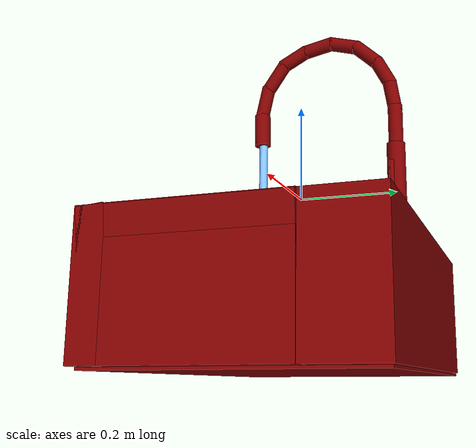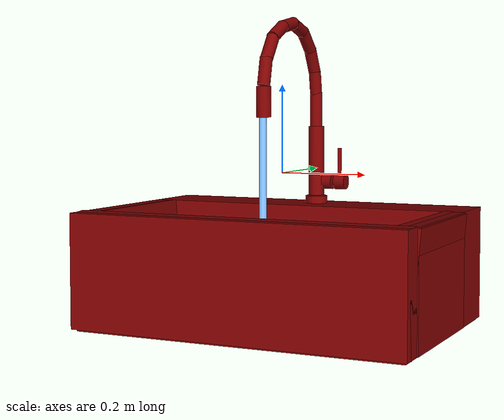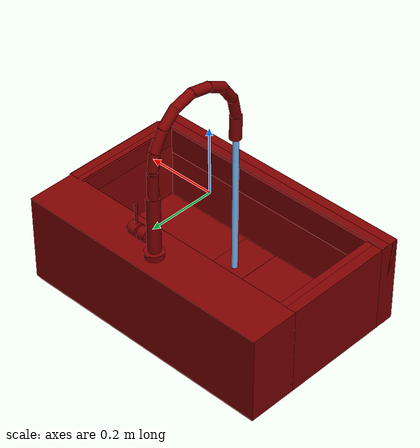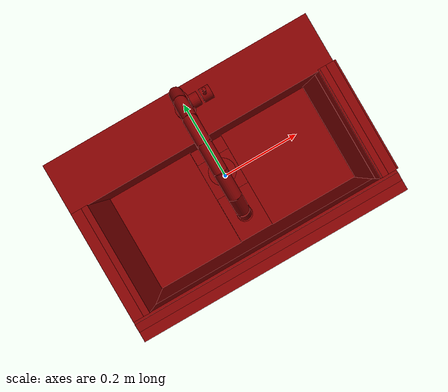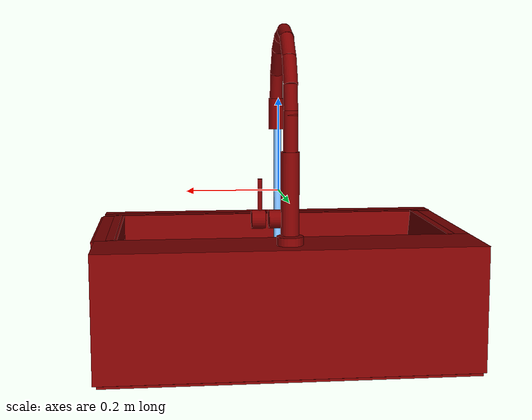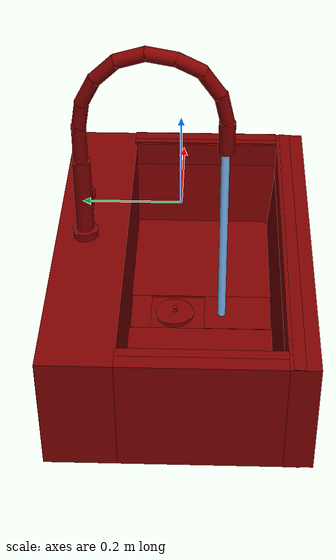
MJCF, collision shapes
<mujoco model="model">
  <compiler angle="radian"/>
  <asset>
    <mesh file="visuals/handle.obj" name="handle_vis"/>
    <mesh file="visuals/Body001.obj" name="Body001_vis"/>
    <mesh file="visuals/Funnel001.obj" name="Funnel001_vis"/>
    <mesh file="visuals/spout.obj" name="spout_vis"/>
    <texture file="visuals/T_BC001.png" name="Body001_material" type="2d"/>
    <material name="Body001_material" rgba="1 1 1 1.0" texture="Body001_material" shininess="0.5" specular="0.3103448502657381"/>
    <texture file="visuals/T_BC001.png" name="handle_material" type="2d"/>
    <material name="handle_material" rgba="1 1 1 1.0" texture="handle_material" shininess="0.5" specular="0.3103448502657381"/>
    <texture file="visuals/T_BC001.png" name="Funnel001_material" type="2d"/>
    <material name="Funnel001_material" rgba="1 1 1 1.0" texture="Funnel001_material" shininess="0.5" specular="0.3103448502657381"/>
    <texture file="visuals/T_BC001.png" name="spout_material" type="2d"/>
    <material name="spout_material" rgba="1 1 1 1.0" texture="spout_material" shininess="0.5" specular="0.3103448502657381"/>
  </asset>
  <default>
    <default class="visual">
      <geom conaffinity="0" contype="0" group="1" type="mesh"/>
    </default>
    <default class="collision">
      <geom group="0" rgba="0.5 0 0 0.5"/>
    </default>
    <default class="spawn">
      <geom group="0" rgba="1 1 1 0.5" contype="0" conaffinity="0"/>
      <site group="0" rgba="1 1 1 0.5"/>
    </default>
    <default class="region">
      <geom group="1" conaffinity="0" contype="0" rgba="0 1 0 0"/>
    </default>
  </default>
  <worldbody>
    <body>
      <body name="object">
        <geom mesh="Body001_vis" type="mesh" solimp="0.998 0.998 0.001" solref="0.001 1" density="100" friction="0.95 0.3 0.1" class="visual" material="Body001_material"/>
        <geom class="collision" type="box" pos="0.3697492480278015 -0.04568054899573326 -0.2152286171913147" size="0.024395400658249855 0.1631319373846054 0.13056614995002747" quat="1.0 0.0 0.0 0.0"/>
        <geom class="collision" type="box" pos="-0.3610308766365051 -0.04747682437300682 -0.2152286171913147" size="0.024395400658249855 0.16192060708999634 0.13056538999080658" quat="0.9991624355316162 -1.7868886353081736e-15 -0.04091975465416908 -5.497930999354139e-09"/>
        <geom class="collision" type="box" pos="-0.0026058852672576904 -0.23854374885559082 -0.2152286171913147" size="0.3940281867980957 0.029978249222040176 0.13056379556655884" quat="1.0 0.0 0.0 0.0"/>
        <geom class="collision" type="box" pos="-0.0026058852672576904 0.1867445409297943 -0.21522870659828186" size="0.3940281867980957 0.0734427198767662 0.13056260347366333" quat="1.0 0.0 0.0 0.0"/>
        <geom class="collision" type="box" pos="0.19231392443180084 -0.041119471192359924 -0.29505303502082825" size="0.14259092509746552 0.15329819917678833 0.0025907354429364204" quat="1.0 0.0 0.0 0.0"/>
        <geom class="collision" type="box" pos="-0.19971199333667755 -0.041119471192359924 -0.29505303502082825" size="0.14259092509746552 0.15329819917678833 0.0025907354429364204" quat="1.0 0.0 0.0 0.0"/>
        <geom class="collision" type="box" pos="-0.003319887910038233 -0.12149616330862045 -0.29505303502082825" size="0.05315235257148743 0.07167475670576096 0.002590706804767251" quat="1.0 0.0 0.0 0.0"/>
        <geom class="collision" type="box" pos="-0.003319887910038233 0.0885448157787323 -0.29505303502082825" size="0.05315235257148743 0.021316012367606163 0.002590713556855917" quat="1.0 0.0 0.0 0.0"/>
        <geom class="collision" type="box" pos="-0.003686504438519478 0.0016191205941140652 -0.34971803426742554" size="0.3874240517616272 0.2551394999027252 0.0025907610543072224" quat="1.0 0.0 0.0 0.0"/>
        <geom class="collision" type="cylinder" pos="-0.001954361330717802 0.20051738619804382 -0.07855931669473648" size="0.027052659541368484 0.01135980524122715" quat="1.0 0.0 0.0 0.0"/>
        <geom class="collision" type="cylinder" pos="0.029527481645345688 0.20152628421783447 -0.031200895085930824" size="0.018711162731051445 0.011754904873669147" quat="0.7071068286895752 -4.750302906586512e-08 -0.7071067094802856 -4.7503018407724085e-08"/>
        <geom class="collision" type="box" pos="0.36287572979927063 -0.04568054899573326 -0.2152286171913147" size="0.024395400658249855 0.1631319373846054 0.1305655986070633" quat="0.9989326000213623 -1.4677487495185003e-16 0.04619131609797478 6.206211544679263e-09"/>
        <geom class="collision" type="box" pos="-0.37238848209381104 -0.04747682437300682 -0.2152286171913147" size="0.024395400658249855 0.16192060708999634 0.13056544959545135" quat="1.0 0.0 0.0 0.0"/>
        <geom class="collision" type="box" pos="-0.0026058852672576904 -0.22930940985679626 -0.2148112654685974" size="0.3940281867980957 0.02557588554918766 0.13056381046772003" quat="0.9988733530044556 0.04745541885495186 1.0537219731199667e-17 -9.44435023960429e-25"/>
        <body name="handle">
          <joint axis="1.0 0.0 0.0" pos="0.05964481830596924 0.20174899697303772 -0.031078971922397614" limited="true" name="handle_joint_hinge_0" type="hinge" range="-0.7853981633974483 0.7853981633974483" damping="1" frictionloss="1" armature=".01" stiffness="0.05"/>
          <joint axis="0.0 1.0 0.0" pos="0.05964481830596924 0.20174899697303772 -0.031078971922397614" limited="true" name="handle_joint_hinge_1" type="hinge" range="0.0 0.17453292519943295" damping="1" frictionloss="1" armature=".01" stiffness="0.05"/>
          <geom mesh="handle_vis" type="mesh" solimp="0.998 0.998 0.001" solref="0.001 1" density="100" friction="0.95 0.3 0.1" class="visual" material="handle_material"/>
          <geom class="collision" type="cylinder" pos="0.06184382736682892 0.20152628421783447 -0.031200895085930824" size="0.018711162731051445 0.013477998785674572" quat="0.7071068286895752 -4.750302906586512e-08 -0.7071067094802856 -4.7503018407724085e-08"/>
          <geom class="collision" type="cylinder" pos="0.05847639963030815 0.20152628421783447 0.017891760915517807" size="0.004444473888725042 0.031614042818546295" quat="1.9470718370939721e-07 -6.717943534795268e-08 -1.0 -1.3435885648505064e-07"/>
        </body>
        <body name="Funnel001">
          <joint axis="0.0 0.0 1.0" pos="0.00016035611042752862 0.015223007649183273 -0.2924407720565796" limited="true" name="Funnel001_joint" range="0.0 0.07" type="slide" damping="1" frictionloss="1" armature=".01" stiffness="0.05"/>
          <geom mesh="Funnel001_vis" type="mesh" solimp="0.998 0.998 0.001" solref="0.001 1" density="100" friction="0.95 0.3 0.1" class="visual" material="Funnel001_material"/>
          <geom class="collision" type="cylinder" pos="-0.0012551918625831604 0.01581702008843422 -0.29855725169181824" size="0.041678279638290405 0.00451189000159502" quat="1.0 0.0 0.0 0.0"/>
          <geom class="collision" type="cylinder" pos="7.045501115499064e-05 0.015260804444551468 -0.2878127694129944" size="0.005436237435787916 0.005571270361542702" quat="1.0 0.0 0.0 0.0"/>
        </body>
        <body name="spout">
          <joint axis="0.0 0.0 1.0" pos="-0.0016885249642655253 0.2008167803287506 0.12077277898788452" limited="true" name="spout_joint" range="-0.7853981633974483 0.7853981633974483" type="hinge" damping="1" frictionloss="1" armature=".01" stiffness="0.05"/>
          <site type="cylinder" rgba="0.5 0.75 1 1" size="0.008671263232827187 0.21570436656475067" pos="-0.0075034769251942635 -0.0869688019156456 -0.0869072675704956" name="water"/>
          <geom mesh="spout_vis" type="mesh" solimp="0.998 0.998 0.001" solref="0.001 1" density="100" friction="0.95 0.3 0.1" class="visual" material="spout_material"/>
          <geom class="collision" type="cylinder" pos="-0.001954361330717802 0.20013269782066345 0.01861887238919735" size="0.018673621118068695 0.08345291018486023" quat="1.0 0.0 0.0 0.0"/>
          <geom class="collision" type="cylinder" pos="-0.002834070473909378 0.20051738619804382 0.13955920934677124" size="0.014769676141440868 0.04445847123861313" quat="1.0 0.0 0.0 0.0"/>
          <geom class="collision" type="cylinder" pos="-0.0030824856366962194 0.19635505974292755 0.20318326354026794" size="0.014407367445528507 0.031245440244674683" quat="0.9967895150184631 0.08006640523672104 -1.777831331855518e-17 -1.1219279387742514e-24"/>
          <geom class="collision" type="cylinder" pos="-0.003919945098459721 0.17851653695106506 0.26026651263237" size="0.014407367445528507 0.031245442107319832" quat="0.9715372920036316 0.23688659071922302 -5.2599402683177265e-17 2.6492984339654414e-24"/>
          <geom class="collision" type="cylinder" pos="-0.003934482112526894 0.1430046707391739 0.30610159039497375" size="0.014407367445528507 0.031245442107319832" quat="0.9179835319519043 0.39661848545074463 -8.806699490787487e-17 1.8410522580747548e-23"/>
          <geom class="collision" type="cylinder" pos="-0.004705945495516062 0.09510494768619537 0.3337678015232086" size="0.014407367445528507 0.031245442107319832" quat="0.8012946248054504 0.5982699394226074 -1.3284261233761528e-16 1.0294626924525152e-24"/>
          <geom class="collision" type="cylinder" pos="-0.004705945495516062 0.040185436606407166 0.3370712399482727" size="0.014407367445528507 0.031245442107319832" quat="0.6378546953201294 0.770156741142273 -1.710091625521754e-16 2.853263824707535e-23"/>
          <geom class="collision" type="cylinder" pos="-0.004705945495516062 -0.015972860157489777 0.3184894323348999" size="0.014407367445528507 0.031245442107319832" quat="0.5200801491737366 0.8541174530982971 -1.8965214596300574e-16 6.688529748239366e-25"/>
          <geom class="collision" type="cylinder" pos="-0.004705945495516062 -0.05726572498679161 0.28049999475479126" size="0.014407367445528507 0.031245442107319832" quat="0.29846376180648804 0.9544209837913513 -2.1192401704322051e-16 2.1140980010718258e-23"/>
          <geom class="collision" type="cylinder" pos="-0.004705945495516062 -0.08204144239425659 0.22847098112106323" size="0.014407367445528507 0.031245442107319832" quat="0.1095859631896019 0.9939773082733154 -2.2070733842466378e-16 4.309814075752714e-23"/>
          <geom class="collision" type="cylinder" pos="-0.004705945495516062 -0.08862791955471039 0.16193774342536926" size="0.016685059294104576 0.034328892827034" quat="0.011608772911131382 -0.999932587146759 2.2203095975364663e-16 -6.00534374269172e-23"/>
        </body>
        <geom class="region" name="reg_main" type="box" pos="0.0 0.0 -0.21769407391548157" size="0.3966788053512573 0.2648911476135254 0.13294833898544312"/>
        <geom class="region" name="reg_basin" type="box" pos="4.544854164123535e-06 -0.05437660217285156 -0.19451898336410522" size="0.3428928703069687 0.1602126955986023 0.09815976023674011"/>
      </body>
    </body>
  </worldbody>
  <actuator>
    <motor name="handle_joint_hinge_0_actuator" joint="handle_joint_hinge_0" gear="10"/>
    <motor name="handle_joint_hinge_1_actuator" joint="handle_joint_hinge_1" gear="10"/>
    <motor name="Funnel001_joint_actuator" joint="Funnel001_joint" gear="10"/>
    <motor name="spout_joint_actuator" joint="spout_joint" gear="10"/>
  </actuator>
</mujoco>
